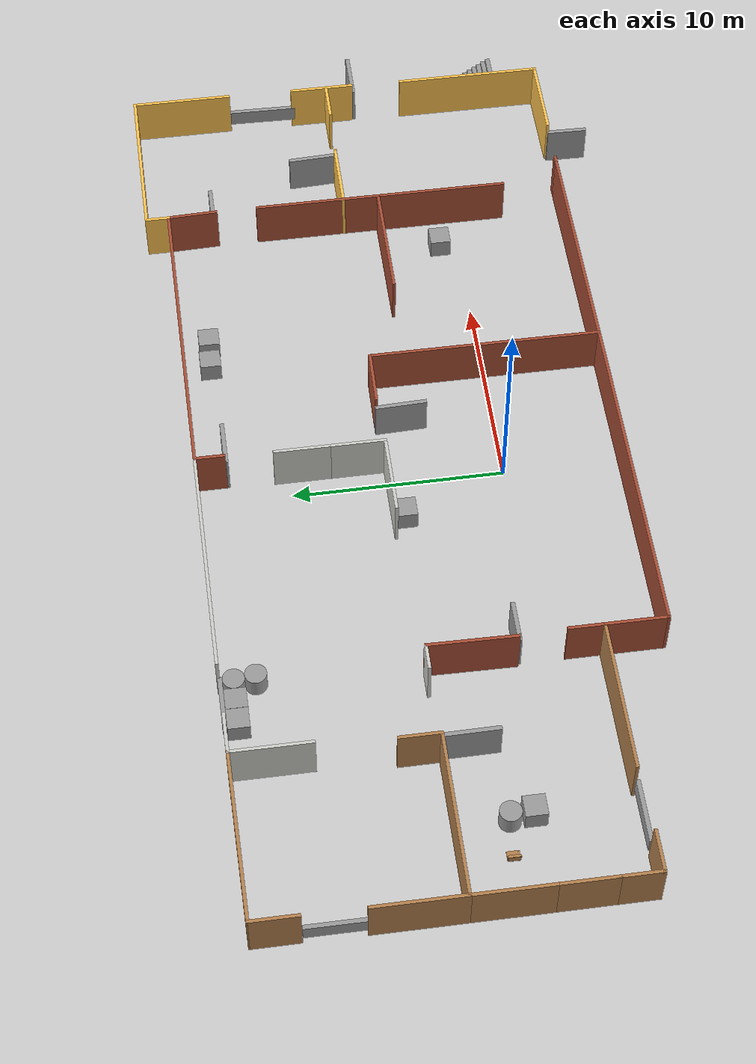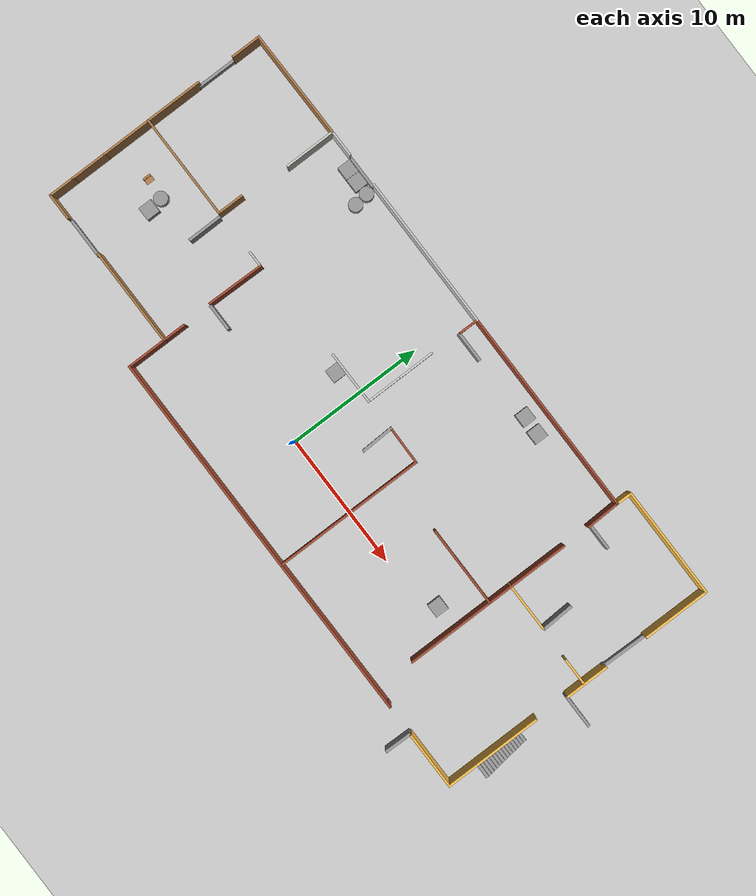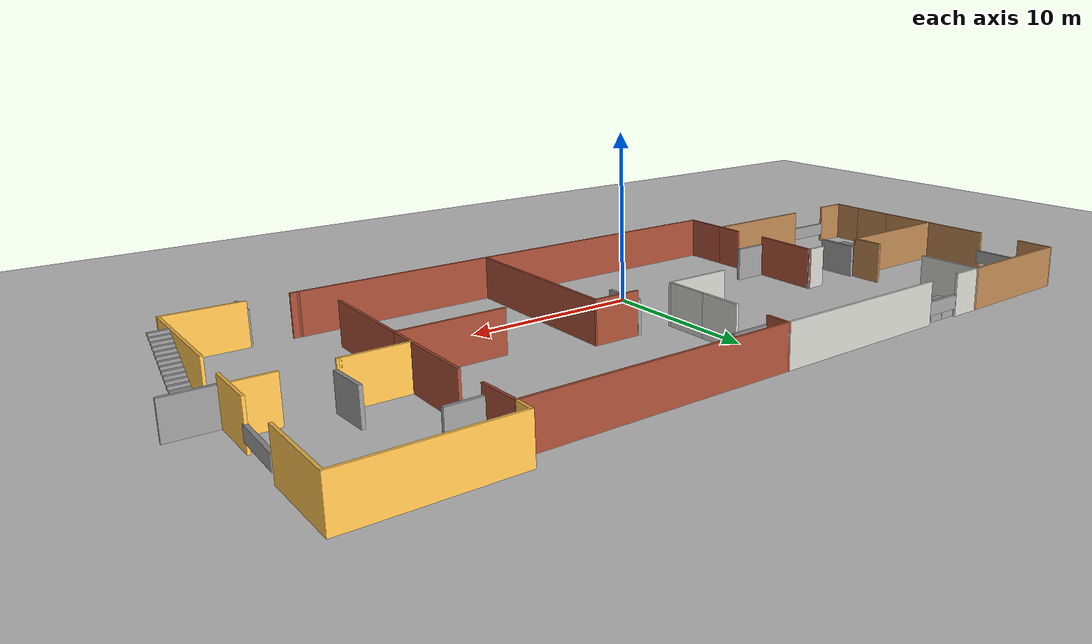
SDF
<sdf version="1.7">
 <world name="default">
  <light name="sun" type="directional">
   <pose>0 0 10 0 -0 0</pose>
   <diffuse>0.8 0.8 0.8 1</diffuse>
   <specular>0.2 0.2 0.2 1</specular>
   <attenuation>
    <range>1000</range>
    <constant>0.9</constant>
    <linear>0.01</linear>
    <quadratic>0.001</quadratic>
   </attenuation>
   <direction>-0.5 0.1 -0.9</direction>
   <spot><inner_angle>0</inner_angle><outer_angle>0</outer_angle><falloff>0</falloff></spot>
  </light>
  <model name="ground_plane">
   <static>1</static>
   <link name="link">
    <collision name="collision">
     <geometry><plane><normal>0 0 1</normal><size>100 100</size></plane></geometry>
     <surface><friction><ode><mu>100</mu><mu2>50</mu2></ode></friction></surface>
    </collision>
    <visual name="visual">
     <cast_shadows>0</cast_shadows>
     <geometry><plane><normal>0 0 1</normal><size>100 100</size></plane></geometry>
     <material>
      <script><uri>file://media/materials/scripts/gazebo.material</uri><name>Gazebo/Grey</name></script>
     </material>
    </visual>
   </link>
  </model>
  <gravity>0 0 -9.8</gravity>
  <magnetic_field>6e-06 2.3e-05 -4.2e-05</magnetic_field>
  <atmosphere type="adiabatic"/>
  <physics type="ode">
   <max_step_size>0.001</max_step_size>
   <real_time_factor>1</real_time_factor>
   <real_time_update_rate>1000</real_time_update_rate>
  </physics>
  <scene><ambient>0.4 0.4 0.4 1</ambient><background>0.7 0.7 0.7 1</background><shadows>1</shadows></scene>
  <audio><device>default</device></audio>
  <spherical_coordinates>
   <surface_model>EARTH_WGS84</surface_model>
   <latitude_deg>0</latitude_deg>
   <longitude_deg>0</longitude_deg>
   <elevation>0</elevation>
   <heading_deg>0</heading_deg>
  </spherical_coordinates>
  <model name="houseRoom">
   <pose>1.283 4.96744 0 0 -0 0</pose>
   <link name="Door_0">
    <collision name="Door_0_Collision">
     <geometry><box><size>2.00125 0.2 2</size></box></geometry>
     <pose>0 0 1 0 -0 0</pose>
    </collision>
    <visual name="Door_0_Visual">
     <pose>0 0 1 0 -0 0</pose>
     <geometry><box><size>2.00125 0.2 2</size></box></geometry>
     <material>
      <script><uri>file://media/materials/scripts/gazebo.material</uri><name>Gazebo/Grey</name></script>
     </material>
    </visual>
    <pose>-10.7502 -3.89696 0 0 -0 0</pose>
   </link>
   <link name="Door_1">
    <collision name="Door_1_Collision">
     <geometry><box><size>2.52128 0.2 2</size></box></geometry>
     <pose>0 0 1 0 -0 0</pose>
    </collision>
    <visual name="Door_1_Visual">
     <pose>0 0 1 0 -0 0</pose>
     <geometry><box><size>2.52128 0.2 2</size></box></geometry>
     <material>
      <script><uri>file://media/materials/scripts/gazebo.material</uri><name>Gazebo/Grey</name></script>
     </material>
    </visual>
    <pose>-15.9667 -1.14277 0 0 -0 1.57895</pose>
   </link>
   <link name="Door_2">
    <collision name="Door_2_Collision">
     <geometry><box><size>2.27656 0.2 2</size></box></geometry>
     <pose>0 0 1 0 -0 0</pose>
    </collision>
    <visual name="Door_2_Visual">
     <pose>0 0 1 0 -0 0</pose>
     <geometry><box><size>2.27656 0.2 2</size></box></geometry>
     <material>
      <script><uri>file://media/materials/scripts/gazebo.material</uri><name>Gazebo/Grey</name></script>
     </material>
    </visual>
    <pose>0.751745 7.97205 0 0 -0 0</pose>
   </link>
   <link name="Door_3">
    <collision name="Door_3_Collision">
     <geometry><box><size>2.4601 0.2 2</size></box></geometry>
     <pose>0 0 1 0 -0 0</pose>
    </collision>
    <visual name="Door_3_Visual">
     <pose>0 0 1 0 -0 0</pose>
     <geometry><box><size>2.4601 0.2 2</size></box></geometry>
     <material>
      <script><uri>file://media/materials/scripts/gazebo.material</uri><name>Gazebo/Grey</name></script>
     </material>
    </visual>
    <pose>1.92052 -0.523085 0 0 -0 -1.53662</pose>
   </link>
   <link name="Door_4">
    <collision name="Door_4_Collision">
     <geometry><box><size>2.49069 0.2 2</size></box></geometry>
     <pose>0 0 1 0 -0 0</pose>
    </collision>
    <visual name="Door_4_Visual">
     <pose>0 0 1 0 -0 0</pose>
     <geometry><box><size>2.49069 0.2 2</size></box></geometry>
     <material>
      <script><uri>file://media/materials/scripts/gazebo.material</uri><name>Gazebo/Grey</name></script>
     </material>
    </visual>
    <pose>24.0462 -0.899115 0 0 -0 0</pose>
   </link>
   <link name="Door_5">
    <collision name="Door_5_Collision">
     <geometry><box><size>1.98764 0.2 2</size></box></geometry>
     <pose>0 0 1 0 -0 0</pose>
    </collision>
    <visual name="Door_5_Visual">
     <pose>0 0 1 0 -0 0</pose>
     <geometry><box><size>1.98764 0.2 2</size></box></geometry>
     <material>
      <script><uri>file://media/materials/scripts/gazebo.material</uri><name>Gazebo/Grey</name></script>
     </material>
    </visual>
    <pose>18.5521 -11.512 0 0 -0 -1.58837</pose>
   </link>
   <link name="Door_6">
    <collision name="Door_6_Collision">
     <geometry><box><size>1.95536 0.2 2</size></box></geometry>
     <pose>0 0 1 0 -0 0</pose>
    </collision>
    <visual name="Door_6_Visual">
     <pose>0 0 1 0 -0 0</pose>
     <geometry><box><size>1.95536 0.2 2</size></box></geometry>
     <material>
      <script><uri>file://media/materials/scripts/gazebo.material</uri><name>Gazebo/Grey</name></script>
     </material>
    </visual>
    <pose>15.8134 7.1758 0 0 -0 0</pose>
   </link>
   <link name="Door_7">
    <collision name="Door_7_Collision">
     <geometry><box><size>2.37751 0.2 2</size></box></geometry>
     <pose>0 0 1 0 -0 0</pose>
    </collision>
    <visual name="Door_7_Visual">
     <pose>0 0 1 0 -0 0</pose>
     <geometry><box><size>2.37751 0.2 2</size></box></geometry>
     <material>
      <script><uri>file://media/materials/scripts/gazebo.material</uri><name>Gazebo/Grey</name></script>
     </material>
    </visual>
    <pose>18.3779 1.77586 0 0 -0 1.61969</pose>
   </link>
   <link name="Stairs_3">
    <visual name="Stairs_3_Visual_0">
     <pose>23.3107 -4.8985 0.083333 0 -0 0</pose>
     <geometry><box><size>1 0.233333 0.166667</size></box></geometry>
     <material>
      <script><uri>file://media/materials/scripts/gazebo.material</uri><name>Gazebo/Grey</name></script>
      <ambient>1 1 1 1</ambient>
     </material>
     <meta><layer>0</layer></meta>
    </visual>
    <collision name="Stairs_3_Collision_0">
     <geometry><box><size>1 0.233333 0.166667</size></box></geometry>
     <pose>23.3107 -4.8985 0.083333 0 -0 0</pose>
    </collision>
    <visual name="Stairs_3_Visual_1">
     <pose>23.3107 -5.13184 0.25 0 -0 0</pose>
     <geometry><box><size>1 0.233333 0.166667</size></box></geometry>
     <material>
      <script><uri>file://media/materials/scripts/gazebo.material</uri><name>Gazebo/Grey</name></script>
      <ambient>1 1 1 1</ambient>
     </material>
     <meta><layer>0</layer></meta>
    </visual>
    <collision name="Stairs_3_Collision_1">
     <geometry><box><size>1 0.233333 0.166667</size></box></geometry>
     <pose>23.3107 -5.13184 0.25 0 -0 0</pose>
    </collision>
    <visual name="Stairs_3_Visual_2">
     <pose>23.3107 -5.36517 0.416667 0 -0 0</pose>
     <geometry><box><size>1 0.233333 0.166667</size></box></geometry>
     <material>
      <script><uri>file://media/materials/scripts/gazebo.material</uri><name>Gazebo/Grey</name></script>
      <ambient>1 1 1 1</ambient>
     </material>
     <meta><layer>0</layer></meta>
    </visual>
    <collision name="Stairs_3_Collision_2">
     <geometry><box><size>1 0.233333 0.166667</size></box></geometry>
     <pose>23.3107 -5.36517 0.416667 0 -0 0</pose>
    </collision>
    <visual name="Stairs_3_Visual_3">
     <pose>23.3107 -5.5985 0.583333 0 -0 0</pose>
     <geometry><box><size>1 0.233333 0.166667</size></box></geometry>
     <material>
      <script><uri>file://media/materials/scripts/gazebo.material</uri><name>Gazebo/Grey</name></script>
      <ambient>1 1 1 1</ambient>
     </material>
     <meta><layer>0</layer></meta>
    </visual>
    <collision name="Stairs_3_Collision_3">
     <geometry><box><size>1 0.233333 0.166667</size></box></geometry>
     <pose>23.3107 -5.5985 0.583333 0 -0 0</pose>
    </collision>
    <visual name="Stairs_3_Visual_4">
     <pose>23.3107 -5.83184 0.75 0 -0 0</pose>
     <geometry><box><size>1 0.233333 0.166667</size></box></geometry>
     <material>
      <script><uri>file://media/materials/scripts/gazebo.material</uri><name>Gazebo/Grey</name></script>
      <ambient>1 1 1 1</ambient>
     </material>
     <meta><layer>0</layer></meta>
    </visual>
    <collision name="Stairs_3_Collision_4">
     <geometry><box><size>1 0.233333 0.166667</size></box></geometry>
     <pose>23.3107 -5.83184 0.75 0 -0 0</pose>
    </collision>
    <visual name="Stairs_3_Visual_5">
     <pose>23.3107 -6.06517 0.916667 0 -0 0</pose>
     <geometry><box><size>1 0.233333 0.166667</size></box></geometry>
     <material>
      <script><uri>file://media/materials/scripts/gazebo.material</uri><name>Gazebo/Grey</name></script>
      <ambient>1 1 1 1</ambient>
     </material>
     <meta><layer>0</layer></meta>
    </visual>
    <collision name="Stairs_3_Collision_5">
     <geometry><box><size>1 0.233333 0.166667</size></box></geometry>
     <pose>23.3107 -6.06517 0.916667 0 -0 0</pose>
    </collision>
    <visual name="Stairs_3_Visual_6">
     <pose>23.3107 -6.2985 1.08333 0 -0 0</pose>
     <geometry><box><size>1 0.233333 0.166667</size></box></geometry>
     <material>
      <script><uri>file://media/materials/scripts/gazebo.material</uri><name>Gazebo/Grey</name></script>
      <ambient>1 1 1 1</ambient>
     </material>
     <meta><layer>0</layer></meta>
    </visual>
    <collision name="Stairs_3_Collision_6">
     <geometry><box><size>1 0.233333 0.166667</size></box></geometry>
     <pose>23.3107 -6.2985 1.08333 0 -0 0</pose>
    </collision>
    <visual name="Stairs_3_Visual_7">
     <pose>23.3107 -6.53184 1.25 0 -0 0</pose>
     <geometry><box><size>1 0.233333 0.166667</size></box></geometry>
     <material>
      <script><uri>file://media/materials/scripts/gazebo.material</uri><name>Gazebo/Grey</name></script>
      <ambient>1 1 1 1</ambient>
     </material>
     <meta><layer>0</layer></meta>
    </visual>
    <collision name="Stairs_3_Collision_7">
     <geometry><box><size>1 0.233333 0.166667</size></box></geometry>
     <pose>23.3107 -6.53184 1.25 0 -0 0</pose>
    </collision>
    <visual name="Stairs_3_Visual_8">
     <pose>23.3107 -6.76517 1.41667 0 -0 0</pose>
     <geometry><box><size>1 0.233333 0.166667</size></box></geometry>
     <material>
      <script><uri>file://media/materials/scripts/gazebo.material</uri><name>Gazebo/Grey</name></script>
      <ambient>1 1 1 1</ambient>
     </material>
     <meta><layer>0</layer></meta>
    </visual>
    <collision name="Stairs_3_Collision_8">
     <geometry><box><size>1 0.233333 0.166667</size></box></geometry>
     <pose>23.3107 -6.76517 1.41667 0 -0 0</pose>
    </collision>
    <visual name="Stairs_3_Visual_9">
     <pose>23.3107 -6.9985 1.58333 0 -0 0</pose>
     <geometry><box><size>1 0.233333 0.166667</size></box></geometry>
     <material>
      <script><uri>file://media/materials/scripts/gazebo.material</uri><name>Gazebo/Grey</name></script>
      <ambient>1 1 1 1</ambient>
     </material>
     <meta><layer>0</layer></meta>
    </visual>
    <collision name="Stairs_3_Collision_9">
     <geometry><box><size>1 0.233333 0.166667</size></box></geometry>
     <pose>23.3107 -6.9985 1.58333 0 -0 0</pose>
    </collision>
    <visual name="Stairs_3_Visual_10">
     <pose>23.3107 -7.23184 1.75 0 -0 0</pose>
     <geometry><box><size>1 0.233333 0.166667</size></box></geometry>
     <material>
      <script><uri>file://media/materials/scripts/gazebo.material</uri><name>Gazebo/Grey</name></script>
      <ambient>1 1 1 1</ambient>
     </material>
     <meta><layer>0</layer></meta>
    </visual>
    <collision name="Stairs_3_Collision_10">
     <geometry><box><size>1 0.233333 0.166667</size></box></geometry>
     <pose>23.3107 -7.23184 1.75 0 -0 0</pose>
    </collision>
    <visual name="Stairs_3_Visual_11">
     <pose>23.3107 -7.46517 1.91667 0 -0 0</pose>
     <geometry><box><size>1 0.233333 0.166667</size></box></geometry>
     <material>
      <script><uri>file://media/materials/scripts/gazebo.material</uri><name>Gazebo/Grey</name></script>
      <ambient>1 1 1 1</ambient>
     </material>
     <meta><layer>0</layer></meta>
    </visual>
    <collision name="Stairs_3_Collision_11">
     <geometry><box><size>1 0.233333 0.166667</size></box></geometry>
     <pose>23.3107 -7.46517 1.91667 0 -0 0</pose>
    </collision>
    <visual name="Stairs_3_Visual_12">
     <pose>23.3107 -7.6985 2.08333 0 -0 0</pose>
     <geometry><box><size>1 0.233333 0.166667</size></box></geometry>
     <material>
      <script><uri>file://media/materials/scripts/gazebo.material</uri><name>Gazebo/Grey</name></script>
      <ambient>1 1 1 1</ambient>
     </material>
     <meta><layer>0</layer></meta>
    </visual>
    <collision name="Stairs_3_Collision_12">
     <geometry><box><size>1 0.233333 0.166667</size></box></geometry>
     <pose>23.3107 -7.6985 2.08333 0 -0 0</pose>
    </collision>
    <visual name="Stairs_3_Visual_13">
     <pose>23.3107 -7.93184 2.25 0 -0 0</pose>
     <geometry><box><size>1 0.233333 0.166667</size></box></geometry>
     <material>
      <script><uri>file://media/materials/scripts/gazebo.material</uri><name>Gazebo/Grey</name></script>
      <ambient>1 1 1 1</ambient>
     </material>
     <meta><layer>0</layer></meta>
    </visual>
    <collision name="Stairs_3_Collision_13">
     <geometry><box><size>1 0.233333 0.166667</size></box></geometry>
     <pose>23.3107 -7.93184 2.25 0 -0 0</pose>
    </collision>
    <visual name="Stairs_3_Visual_14">
     <pose>23.3107 -8.16517 2.41667 0 -0 0</pose>
     <geometry><box><size>1 0.233333 0.166667</size></box></geometry>
     <material>
      <script><uri>file://media/materials/scripts/gazebo.material</uri><name>Gazebo/Grey</name></script>
      <ambient>1 1 1 1</ambient>
     </material>
     <meta><layer>0</layer></meta>
    </visual>
    <collision name="Stairs_3_Collision_14">
     <geometry><box><size>1 0.233333 0.166667</size></box></geometry>
     <pose>23.3107 -8.16517 2.41667 0 -0 0</pose>
    </collision>
   </link>
   <link name="Wall_13">
    <collision name="Wall_13_Collision">
     <geometry><box><size>7.75 0.15 2.5</size></box></geometry>
     <pose>0 0 1.25 0 -0 0</pose>
    </collision>
    <visual name="Wall_13_Visual">
     <pose>0 0 1.25 0 -0 0</pose>
     <geometry><box><size>7.75 0.15 2.5</size></box></geometry>
     <material>
      <script><uri>file://media/materials/scripts/gazebo.material</uri><name>Gazebo/Wood</name></script>
      <ambient>1 1 1 1</ambient>
     </material>
     <meta><layer>0</layer></meta>
    </visual>
    <pose>-19.9357 0.231814 0 0 -0 0</pose>
   </link>
   <link name="Wall_14">
    <collision name="Wall_14_Collision">
     <geometry><box><size>2 0.15 2.5</size></box></geometry>
     <pose>0 0 1.25 0 -0 0</pose>
    </collision>
    <visual name="Wall_14_Visual">
     <pose>0 0 1.25 0 -0 0</pose>
     <geometry><box><size>2 0.15 2.5</size></box></geometry>
     <material>
      <script><uri>file://media/materials/scripts/gazebo.material</uri><name>Gazebo/Wood</name></script>
      <ambient>1 1 1 1</ambient>
     </material>
     <meta><layer>0</layer></meta>
    </visual>
    <pose>-16.1357 1.15681 0 0 -0 1.5708</pose>
   </link>
   <link name="Wall_16">
    <collision name="Wall_16_Collision">
     <geometry><box><size>3.75 0.15 2.5</size></box></geometry>
     <pose>0 0 1.25 0 -0 0</pose>
    </collision>
    <visual name="Wall_16_Visual">
     <pose>0 0 1.25 0 -0 0</pose>
     <geometry><box><size>3.75 0.15 2.5</size></box></geometry>
     <material>
      <script><uri>file://media/materials/scripts/gazebo.material</uri><name>Gazebo/Wood</name></script>
      <ambient>1 1 1 1</ambient>
     </material>
     <meta><layer>0</layer></meta>
    </visual>
    <pose>-23.7357 -1.56819 0 0 -0 -1.5708</pose>
   </link>
   <link name="Wall_17">
    <collision name="Wall_17_Collision">
     <geometry><box><size>2.75 0.15 2.5</size></box></geometry>
     <pose>0 0 1.25 0 -0 0</pose>
    </collision>
    <visual name="Wall_17_Visual">
     <pose>0 0 1.25 0 -0 0</pose>
     <geometry><box><size>2.75 0.15 2.5</size></box></geometry>
     <material>
      <script><uri>file://media/materials/scripts/gazebo.material</uri><name>Gazebo/Wood</name></script>
      <ambient>1 1 1 1</ambient>
     </material>
     <meta><layer>0</layer></meta>
    </visual>
    <pose>-23.7357 -4.66819 0 0 -0 -1.5708</pose>
   </link>
   <link name="Wall_18">
    <collision name="Wall_18_Collision">
     <geometry><box><size>2 0.15 2.5</size></box></geometry>
     <pose>0 0 1.25 0 -0 0</pose>
    </collision>
    <visual name="Wall_18_Visual">
     <pose>0 0 1.25 0 -0 0</pose>
     <geometry><box><size>2 0.15 2.5</size></box></geometry>
     <material>
      <script><uri>file://media/materials/scripts/gazebo.material</uri><name>Gazebo/Wood</name></script>
      <ambient>1 1 1 1</ambient>
     </material>
     <meta><layer>0</layer></meta>
    </visual>
    <pose>-23.7357 -6.89319 0 0 -0 -1.5708</pose>
   </link>
   <link name="Wall_19">
    <collision name="Wall_19_Collision">
     <geometry><box><size>2 0.15 2.5</size></box></geometry>
     <pose>0 0 1.25 0 -0 0</pose>
    </collision>
    <visual name="Wall_19_Visual">
     <pose>0 0 1.25 0 -0 0</pose>
     <geometry><box><size>2 0.15 2.5</size></box></geometry>
     <material>
      <script><uri>file://media/materials/scripts/gazebo.material</uri><name>Gazebo/Wood</name></script>
      <ambient>1 1 1 1</ambient>
     </material>
     <meta><layer>0</layer></meta>
    </visual>
    <pose>-22.8107 -7.81819 0 0 -0 0</pose>
   </link>
   <link name="Wall_2">
    <collision name="Wall_2_Collision">
     <geometry><box><size>8 0.15 2.5</size></box></geometry>
     <pose>0 0 1.25 0 -0 0</pose>
    </collision>
    <visual name="Wall_2_Visual">
     <pose>0 0 1.25 0 -0 0</pose>
     <geometry><box><size>8 0.15 2.5</size></box></geometry>
     <material>
      <script><uri>file://media/materials/scripts/gazebo.material</uri><name>Gazebo/Wood</name></script>
      <ambient>1 1 1 1</ambient>
     </material>
     <meta><layer>0</layer></meta>
    </visual>
    <pose>-19.7801 9.31802 0 0 -0 0.007794</pose>
   </link>
   <link name="Wall_21">
    <collision name="Wall_21_Collision">
     <geometry><box><size>7.25 0.15 2.5</size></box></geometry>
     <pose>0 0 1.25 0 -0 0</pose>
    </collision>
    <visual name="Wall_21_Visual">
     <pose>0 0 1.25 0 -0 0</pose>
     <geometry><box><size>7.25 0.15 2.5</size></box></geometry>
     <material>
      <script><uri>file://media/materials/scripts/gazebo.material</uri><name>Gazebo/Wood</name></script>
      <ambient>1 1 1 1</ambient>
     </material>
     <meta><layer>0</layer></meta>
    </visual>
    <pose>-15.2607 -7.65956 0 0 -0 0</pose>
   </link>
   <link name="Wall_22">
    <collision name="Wall_22_Collision">
     <geometry><box><size>1.75 0.15 2.5</size></box></geometry>
     <pose>0 0 1.25 0 -0 0</pose>
    </collision>
    <visual name="Wall_22_Visual">
     <pose>0 0 1.25 0 -0 0</pose>
     <geometry><box><size>1.75 0.15 2.5</size></box></geometry>
     <material>
      <script><uri>file://media/materials/scripts/gazebo.material</uri><name>Gazebo/Bricks</name></script>
      <ambient>1 1 1 1</ambient>
     </material>
     <meta><layer>0</layer></meta>
    </visual>
    <pose>-11.7107 -6.85956 0 0 -0 1.5708</pose>
   </link>
   <link name="Wall_24">
    <collision name="Wall_24_Collision">
     <geometry><box><size>4.24518 0.15 2.5</size></box></geometry>
     <pose>0 0 1.25 0 -0 0</pose>
    </collision>
    <visual name="Wall_24_Visual">
     <pose>0 0 1.25 0 -0 0</pose>
     <geometry><box><size>4.24518 0.15 2.5</size></box></geometry>
     <material>
      <script><uri>file://media/materials/scripts/gazebo.material</uri><name>Gazebo/Bricks</name></script>
      <ambient>1 1 1 1</ambient>
     </material>
     <meta><layer>0</layer></meta>
    </visual>
    <pose>-11.775 -1.75783 0 0 -0 1.55586</pose>
   </link>
   <link name="Wall_25">
    <collision name="Wall_25_Collision">
     <geometry><box><size>1.25 0.15 2.5</size></box></geometry>
     <pose>0 0 1.25 0 -0 0</pose>
    </collision>
    <visual name="Wall_25_Visual">
     <pose>0 0 1.25 0 -0 0</pose>
     <geometry><box><size>1.25 0.15 2.5</size></box></geometry>
     <material>
      <script><uri>file://media/materials/scripts/gazebo.material</uri><name>Gazebo/CeilingTiled</name></script>
      <ambient>1 1 1 1</ambient>
     </material>
     <meta><layer>0</layer></meta>
    </visual>
    <pose>-12.2944 0.289535 0 0 -0 3.14159</pose>
   </link>
   <link name="Wall_3">
    <collision name="Wall_3_Collision">
     <geometry><box><size>3.81118 0.15 2.5</size></box></geometry>
     <pose>0 0 1.25 0 -0 0</pose>
    </collision>
    <visual name="Wall_3_Visual">
     <pose>0 0 1.25 0 -0 0</pose>
     <geometry><box><size>3.81118 0.15 2.5</size></box></geometry>
     <material>
      <script><uri>file://media/materials/scripts/gazebo.material</uri><name>Gazebo/CeilingTiled</name></script>
      <ambient>1 1 1 1</ambient>
     </material>
     <meta><layer>0</layer></meta>
    </visual>
    <pose>-15.8551 7.51802 0 0 -0 -1.5708</pose>
   </link>
   <link name="Wall_30">
    <collision name="Wall_30_Collision">
     <geometry><box><size>2 0.15 2.5</size></box></geometry>
     <pose>0 0 1.25 0 -0 0</pose>
    </collision>
    <visual name="Wall_30_Visual">
     <pose>0 0 1.25 0 -0 0</pose>
     <geometry><box><size>2 0.15 2.5</size></box></geometry>
     <material>
      <script><uri>file://media/materials/scripts/gazebo.material</uri><name>Gazebo/CeilingTiled</name></script>
      <ambient>1 1 1 1</ambient>
     </material>
     <meta><layer>0</layer></meta>
    </visual>
    <pose>-14.9301 9.34861 0 0 -0 0</pose>
   </link>
   <link name="Wall_32">
    <collision name="Wall_32_Collision">
     <geometry><box><size>11.25 0.15 2.5</size></box></geometry>
     <pose>0 0 1.25 0 -0 0</pose>
    </collision>
    <visual name="Wall_32_Visual">
     <pose>0 0 1.25 0 -0 0</pose>
     <geometry><box><size>11.25 0.15 2.5</size></box></geometry>
     <material>
      <script><uri>file://media/materials/scripts/gazebo.material</uri><name>Gazebo/CeilingTiled</name></script>
      <ambient>1 1 1 1</ambient>
     </material>
     <meta><layer>0</layer></meta>
    </visual>
    <pose>-5.88846 9.40979 0 0 -0 0</pose>
   </link>
   <link name="Wall_33">
    <collision name="Wall_33_Collision">
     <geometry><box><size>1.5 0.15 2.5</size></box></geometry>
     <pose>0 0 1.25 0 -0 0</pose>
    </collision>
    <visual name="Wall_33_Visual">
     <pose>0 0 1.25 0 -0 0</pose>
     <geometry><box><size>1.5 0.15 2.5</size></box></geometry>
     <material>
      <script><uri>file://media/materials/scripts/gazebo.material</uri><name>Gazebo/Bricks</name></script>
      <ambient>1 1 1 1</ambient>
     </material>
     <meta><layer>0</layer></meta>
    </visual>
    <pose>-0.338461 8.73479 0 0 -0 -1.5708</pose>
   </link>
   <link name="Wall_35">
    <collision name="Wall_35_Collision">
     <geometry><box><size>2.68882 0.15 2.5</size></box></geometry>
     <pose>0 0 1.25 0 -0 0</pose>
    </collision>
    <visual name="Wall_35_Visual">
     <pose>0 0 1.25 0 -0 0</pose>
     <geometry><box><size>2.68882 0.15 2.5</size></box></geometry>
     <material>
      <script><uri>file://media/materials/scripts/gazebo.material</uri><name>Gazebo/CeilingTiled</name></script>
      <ambient>1 1 1 1</ambient>
     </material>
     <meta><layer>0</layer></meta>
    </visual>
    <pose>-0.425979 4.43896 0 0 -0 -1.5708</pose>
   </link>
   <link name="Wall_36">
    <collision name="Wall_36_Collision">
     <geometry><box><size>2.75 0.15 2.5</size></box></geometry>
     <pose>0 0 1.25 0 -0 0</pose>
    </collision>
    <visual name="Wall_36_Visual">
     <pose>0 0 1.25 0 -0 0</pose>
     <geometry><box><size>2.75 0.15 2.5</size></box></geometry>
     <material>
      <script><uri>file://media/materials/scripts/gazebo.material</uri><name>Gazebo/CeilingTiled</name></script>
      <ambient>1 1 1 1</ambient>
     </material>
     <meta><layer>0</layer></meta>
    </visual>
    <pose>-0.425979 1.83896 0 0 -0 -1.5708</pose>
   </link>
   <link name="Wall_38">
    <collision name="Wall_38_Collision">
     <geometry><box><size>4 0.15 2.5</size></box></geometry>
     <pose>0 0 1.25 0 -0 0</pose>
    </collision>
    <visual name="Wall_38_Visual">
     <pose>0 0 1.25 0 -0 0</pose>
     <geometry><box><size>4 0.15 2.5</size></box></geometry>
     <material>
      <script><uri>file://media/materials/scripts/gazebo.material</uri><name>Gazebo/CeilingTiled</name></script>
      <ambient>1 1 1 1</ambient>
     </material>
     <meta><layer>0</layer></meta>
    </visual>
    <pose>-2.35098 0.538965 0 0 -0 3.14159</pose>
   </link>
   <link name="Wall_41">
    <collision name="Wall_41_Collision">
     <geometry><box><size>3 0.15 2.5</size></box></geometry>
     <pose>0 0 1.25 0 -0 0</pose>
    </collision>
    <visual name="Wall_41_Visual">
     <pose>0 0 1.25 0 -0 0</pose>
     <geometry><box><size>3 0.15 2.5</size></box></geometry>
     <material>
      <script><uri>file://media/materials/scripts/gazebo.material</uri><name>Gazebo/Bricks</name></script>
      <ambient>1 1 1 1</ambient>
     </material>
     <meta><layer>0</layer></meta>
    </visual>
    <pose>-11.7107 -9.08456 0 0 -0 -1.5708</pose>
   </link>
   <link name="Wall_42">
    <collision name="Wall_42_Collision">
     <geometry><box><size>16.5 0.15 2.5</size></box></geometry>
     <pose>0 0 1.25 0 -0 0</pose>
    </collision>
    <visual name="Wall_42_Visual">
     <pose>0 0 1.25 0 -0 0</pose>
     <geometry><box><size>16.5 0.15 2.5</size></box></geometry>
     <material>
      <script><uri>file://media/materials/scripts/gazebo.material</uri><name>Gazebo/Bricks</name></script>
      <ambient>1 1 1 1</ambient>
     </material>
     <meta><layer>0</layer></meta>
    </visual>
    <pose>-3.53571 -10.5096 0 0 -0 0</pose>
   </link>
   <link name="Wall_43">
    <collision name="Wall_43_Collision">
     <geometry><box><size>11.25 0.15 2.5</size></box></geometry>
     <pose>0 0 1.25 0 -0 0</pose>
    </collision>
    <visual name="Wall_43_Visual">
     <pose>0 0 1.25 0 -0 0</pose>
     <geometry><box><size>11.25 0.15 2.5</size></box></geometry>
     <material>
      <script><uri>file://media/materials/scripts/gazebo.material</uri><name>Gazebo/Bricks</name></script>
      <ambient>1 1 1 1</ambient>
     </material>
     <meta><layer>0</layer></meta>
    </visual>
    <pose>4.63929 -4.95956 0 0 -0 1.5708</pose>
   </link>
   <link name="Wall_45">
    <collision name="Wall_45_Collision">
     <geometry><box><size>2.76836 0.15 2.5</size></box></geometry>
     <pose>0 0 1.25 0 -0 0</pose>
    </collision>
    <visual name="Wall_45_Visual">
     <pose>0 0 1.25 0 -0 0</pose>
     <geometry><box><size>2.76836 0.15 2.5</size></box></geometry>
     <material>
      <script><uri>file://media/materials/scripts/gazebo.material</uri><name>Gazebo/Bricks</name></script>
      <ambient>1 1 1 1</ambient>
     </material>
     <meta><layer>0</layer></meta>
    </visual>
    <pose>3.33027 0.61042 0 0 -0 -0.015259</pose>
   </link>
   <link name="Wall_47">
    <collision name="Wall_47_Collision">
     <geometry><box><size>15.25 0.15 2.5</size></box></geometry>
     <pose>0 0 1.25 0 -0 0</pose>
    </collision>
    <visual name="Wall_47_Visual">
     <pose>0 0 1.25 0 -0 0</pose>
     <geometry><box><size>15.25 0.15 2.5</size></box></geometry>
     <material>
      <script><uri>file://media/materials/scripts/gazebo.material</uri><name>Gazebo/Bricks</name></script>
      <ambient>1 1 1 1</ambient>
     </material>
     <meta><layer>0</layer></meta>
    </visual>
    <pose>7.21154 9.40979 0 0 -0 0</pose>
   </link>
   <link name="Wall_48">
    <collision name="Wall_48_Collision">
     <geometry><box><size>1.25 0.15 2.5</size></box></geometry>
     <pose>0 0 1.25 0 -0 0</pose>
    </collision>
    <visual name="Wall_48_Visual">
     <pose>0 0 1.25 0 -0 0</pose>
     <geometry><box><size>1.25 0.15 2.5</size></box></geometry>
     <material>
      <script><uri>file://media/materials/scripts/gazebo.material</uri><name>Gazebo/Grey</name></script>
      <ambient>1 0.764706 0.305882 1</ambient>
     </material>
     <meta><layer>0</layer></meta>
    </visual>
    <pose>14.7615 9.95979 0 0 -0 1.5708</pose>
   </link>
   <link name="Wall_49">
    <collision name="Wall_49_Collision">
     <geometry><box><size>8.25 0.15 2.5</size></box></geometry>
     <pose>0 0 1.25 0 -0 0</pose>
    </collision>
    <visual name="Wall_49_Visual">
     <pose>0 0 1.25 0 -0 0</pose>
     <geometry><box><size>8.25 0.15 2.5</size></box></geometry>
     <material>
      <script><uri>file://media/materials/scripts/gazebo.material</uri><name>Gazebo/Grey</name></script>
      <ambient>1 0.764706 0.305882 1</ambient>
     </material>
     <meta><layer>0</layer></meta>
    </visual>
    <pose>18.8115 10.5098 0 0 -0 0</pose>
   </link>
   <link name="Wall_5">
    <collision name="Wall_5_Collision">
     <geometry><box><size>2.25 0.15 2.5</size></box></geometry>
     <pose>0 0 1.25 0 -0 0</pose>
    </collision>
    <visual name="Wall_5_Visual">
     <pose>0 0 1.25 0 -0 0</pose>
     <geometry><box><size>2.25 0.15 2.5</size></box></geometry>
     <material>
      <script><uri>file://media/materials/scripts/gazebo.material</uri><name>Gazebo/Wood</name></script>
      <ambient>1 1 1 1</ambient>
     </material>
     <meta><layer>0</layer></meta>
    </visual>
    <pose>-23.7051 8.23743 0 0 -0 -1.5708</pose>
   </link>
   <link name="Wall_50">
    <collision name="Wall_50_Collision">
     <geometry><box><size>5 0.15 2.5</size></box></geometry>
     <pose>0 0 1.25 0 -0 0</pose>
    </collision>
    <visual name="Wall_50_Visual">
     <pose>0 0 1.25 0 -0 0</pose>
     <geometry><box><size>5 0.15 2.5</size></box></geometry>
     <material>
      <script><uri>file://media/materials/scripts/gazebo.material</uri><name>Gazebo/Grey</name></script>
      <ambient>1 0.764706 0.305882 1</ambient>
     </material>
     <meta><layer>0</layer></meta>
    </visual>
    <pose>22.8615 8.08479 0 0 -0 -1.5708</pose>
   </link>
   <link name="Wall_53">
    <collision name="Wall_53_Collision">
     <geometry><box><size>3.25 0.15 2.5</size></box></geometry>
     <pose>0 0 1.25 0 -0 0</pose>
    </collision>
    <visual name="Wall_53_Visual">
     <pose>0 0 1.25 0 -0 0</pose>
     <geometry><box><size>3.25 0.15 2.5</size></box></geometry>
     <material>
      <script><uri>file://media/materials/scripts/gazebo.material</uri><name>Gazebo/Grey</name></script>
      <ambient>1 0.764706 0.305882 1</ambient>
     </material>
     <meta><layer>0</layer></meta>
    </visual>
    <pose>22.8226 0.762859 0 0 -0 -1.5708</pose>
   </link>
   <link name="Wall_55">
    <collision name="Wall_55_Collision">
     <geometry><box><size>7.25 0.15 2.5</size></box></geometry>
     <pose>0 0 1.25 0 -0 0</pose>
    </collision>
    <visual name="Wall_55_Visual">
     <pose>0 0 1.25 0 -0 0</pose>
     <geometry><box><size>7.25 0.15 2.5</size></box></geometry>
     <material>
      <script><uri>file://media/materials/scripts/gazebo.material</uri><name>Gazebo/Grey</name></script>
      <ambient>1 0.764706 0.305882 1</ambient>
     </material>
     <meta><layer>0</layer></meta>
    </visual>
    <pose>22.7614 -6.95751 0 0 -0 -1.5708</pose>
   </link>
   <link name="Wall_56">
    <collision name="Wall_56_Collision">
     <geometry><box><size>4.25 0.15 2.5</size></box></geometry>
     <pose>0 0 1.25 0 -0 0</pose>
    </collision>
    <visual name="Wall_56_Visual">
     <pose>0 0 1.25 0 -0 0</pose>
     <geometry><box><size>4.25 0.15 2.5</size></box></geometry>
     <material>
      <script><uri>file://media/materials/scripts/gazebo.material</uri><name>Gazebo/Grey</name></script>
      <ambient>1 0.764706 0.305882 1</ambient>
     </material>
     <meta><layer>0</layer></meta>
    </visual>
    <pose>20.7114 -10.5075 0 0 -0 3.14159</pose>
   </link>
   <link name="Wall_58">
    <collision name="Wall_58_Collision">
     <geometry><box><size>0.5 0.15 2.5</size></box></geometry>
     <pose>0 0 1.25 0 -0 0</pose>
    </collision>
    <visual name="Wall_58_Visual">
     <pose>0 0 1.25 0 -0 0</pose>
     <geometry><box><size>0.5 0.15 2.5</size></box></geometry>
     <material>
      <script><uri>file://media/materials/scripts/gazebo.material</uri><name>Gazebo/Bricks</name></script>
      <ambient>1 1 1 1</ambient>
     </material>
     <meta><layer>0</layer></meta>
    </visual>
    <pose>16.1319 -10.4739 0 0 -0 3.14159</pose>
   </link>
   <link name="Wall_59">
    <collision name="Wall_59_Collision">
     <geometry><box><size>11.4676 0.15 2.5</size></box></geometry>
     <pose>0 0 1.25 0 -0 0</pose>
    </collision>
    <visual name="Wall_59_Visual">
     <pose>0 0 1.25 0 -0 0</pose>
     <geometry><box><size>11.4676 0.15 2.5</size></box></geometry>
     <material>
      <script><uri>file://media/materials/scripts/gazebo.material</uri><name>Gazebo/Bricks</name></script>
      <ambient>1 1 1 1</ambient>
     </material>
     <meta><layer>0</layer></meta>
    </visual>
    <pose>10.2981 -10.4917 0 0 -0 -3.13844</pose>
   </link>
   <link name="Wall_62">
    <collision name="Wall_62_Collision">
     <geometry><box><size>6 0.15 2.5</size></box></geometry>
     <pose>0 0 1.25 0 -0 0</pose>
    </collision>
    <visual name="Wall_62_Visual">
     <pose>0 0 1.25 0 -0 0</pose>
     <geometry><box><size>6 0.15 2.5</size></box></geometry>
     <material>
      <script><uri>file://media/materials/scripts/gazebo.material</uri><name>Gazebo/Bricks</name></script>
      <ambient>1 1 1 1</ambient>
     </material>
     <meta><layer>0</layer></meta>
    </visual>
    <pose>11.9313 -1.16156 0 0 -0 0</pose>
   </link>
   <link name="Wall_63">
    <collision name="Wall_63_Collision">
     <geometry><box><size>6.5 0.15 2.5</size></box></geometry>
     <pose>0 0 1.25 0 -0 0</pose>
    </collision>
    <visual name="Wall_63_Visual">
     <pose>0 0 1.25 0 -0 0</pose>
     <geometry><box><size>6.5 0.15 2.5</size></box></geometry>
     <material>
      <script><uri>file://media/materials/scripts/gazebo.material</uri><name>Gazebo/Bricks</name></script>
      <ambient>1 1 1 1</ambient>
     </material>
     <meta><layer>0</layer></meta>
    </visual>
    <pose>14.8563 -4.33656 0 0 -0 -1.5708</pose>
   </link>
   <link name="Wall_66">
    <collision name="Wall_66_Collision">
     <geometry><box><size>6.25 0.15 2.5</size></box></geometry>
     <pose>0 0 1.25 0 -0 0</pose>
    </collision>
    <visual name="Wall_66_Visual">
     <pose>0 0 1.25 0 -0 0</pose>
     <geometry><box><size>6.25 0.15 2.5</size></box></geometry>
     <material>
      <script><uri>file://media/materials/scripts/gazebo.material</uri><name>Gazebo/Bricks</name></script>
      <ambient>1 1 1 1</ambient>
     </material>
     <meta><layer>0</layer></meta>
    </visual>
    <pose>14.8563 1.88844 0 0 -0 1.5708</pose>
   </link>
   <link name="Wall_68">
    <collision name="Wall_68_Collision">
     <geometry><box><size>2.5262 0.15 2.5</size></box></geometry>
     <pose>0 0 1.25 0 -0 0</pose>
    </collision>
    <visual name="Wall_68_Visual">
     <pose>0 0 1.25 0 -0 0</pose>
     <geometry><box><size>2.5262 0.15 2.5</size></box></geometry>
     <material>
      <script><uri>file://media/materials/scripts/gazebo.material</uri><name>Gazebo/Bricks</name></script>
      <ambient>1 1 1 1</ambient>
     </material>
     <meta><layer>0</layer></meta>
    </visual>
    <pose>14.8037 8.22244 0 0 -0 1.60632</pose>
   </link>
   <link name="Wall_71">
    <collision name="Wall_71_Collision">
     <geometry><box><size>2 0.15 2.5</size></box></geometry>
     <pose>0 0 1.25 0 -0 0</pose>
    </collision>
    <visual name="Wall_71_Visual">
     <pose>0 0 1.25 0 -0 0</pose>
     <geometry><box><size>2 0.15 2.5</size></box></geometry>
     <material>
      <script><uri>file://media/materials/scripts/gazebo.material</uri><name>Gazebo/Grey</name></script>
      <ambient>1 0.764706 0.305882 1</ambient>
     </material>
     <meta><layer>0</layer></meta>
    </visual>
    <pose>21.801 0.527016 0 0 -0 3.14159</pose>
   </link>
   <link name="Wall_73">
    <collision name="Wall_73_Collision">
     <geometry><box><size>3.5 0.15 2.5</size></box></geometry>
     <pose>0 0 1.25 0 -0 0</pose>
    </collision>
    <visual name="Wall_73_Visual">
     <pose>0 0 1.25 0 -0 0</pose>
     <geometry><box><size>3.5 0.15 2.5</size></box></geometry>
     <material>
      <script><uri>file://media/materials/scripts/gazebo.material</uri><name>Gazebo/Grey</name></script>
      <ambient>1 0.764706 0.305882 1</ambient>
     </material>
     <meta><layer>0</layer></meta>
    </visual>
    <pose>16.5209 0.597374 0 0 -0 0</pose>
   </link>
   <link name="Wall_74">
    <collision name="Wall_74_Collision">
     <geometry><box><size>0.25 0.15 2.5</size></box></geometry>
     <pose>0 0 1.25 0 -0 0</pose>
    </collision>
    <visual name="Wall_74_Visual">
     <pose>0 0 1.25 0 -0 0</pose>
     <geometry><box><size>0.25 0.15 2.5</size></box></geometry>
     <material>
      <script><uri>file://media/materials/scripts/gazebo.material</uri><name>Gazebo/Grey</name></script>
      <ambient>1 0.764706 0.305882 1</ambient>
     </material>
     <meta><layer>0</layer></meta>
    </visual>
    <pose>18.2459 0.597374 0 0 -0 0</pose>
   </link>
   <link name="Wall_8">
    <collision name="Wall_8_Collision">
     <geometry><box><size>4.25 0.15 2.5</size></box></geometry>
     <pose>0 0 1.25 0 -0 0</pose>
    </collision>
    <visual name="Wall_8_Visual">
     <pose>0 0 1.25 0 -0 0</pose>
     <geometry><box><size>4.25 0.15 2.5</size></box></geometry>
     <material>
      <script><uri>file://media/materials/scripts/gazebo.material</uri><name>Gazebo/Wood</name></script>
      <ambient>1 1 1 1</ambient>
     </material>
     <meta><layer>0</layer></meta>
    </visual>
    <pose>-23.7357 2.28181 0 0 -0 -1.5708</pose>
   </link>
   <link name="Window_0">
    <collision name="Window_0_Collision">
     <geometry><box><size>2.84954 0.2 0.8</size></box></geometry>
     <pose>0 0 0.4 0 -0 0</pose>
    </collision>
    <visual name="Window_0_Visual">
     <pose>0 0 0.4 0 -0 0</pose>
     <geometry><box><size>2.84954 0.2 0.8</size></box></geometry>
     <material>
      <script><uri>file://media/materials/scripts/gazebo.material</uri><name>Gazebo/Grey</name></script>
     </material>
    </visual>
    <pose>-23.6898 5.67778 0.5 0 -0 -1.57178</pose>
   </link>
   <link name="Window_1">
    <collision name="Window_1_Collision">
     <geometry><box><size>2.94132 0.2 0.8</size></box></geometry>
     <pose>0 0 0.4 0 -0 0</pose>
    </collision>
    <visual name="Window_1_Visual">
     <pose>0 0 0.4 0 -0 0</pose>
     <geometry><box><size>2.94132 0.2 0.8</size></box></geometry>
     <material>
      <script><uri>file://media/materials/scripts/gazebo.material</uri><name>Gazebo/Grey</name></script>
     </material>
    </visual>
    <pose>-20.3096 -7.78192 0.5 0 -0 0</pose>
   </link>
   <link name="Window_2">
    <collision name="Window_2_Collision">
     <geometry><box><size>2.42128 0.2 0.8</size></box></geometry>
     <pose>0 0 0.4 0 -0 0</pose>
    </collision>
    <visual name="Window_2_Visual">
     <pose>0 0 0.4 0 -0 0</pose>
     <geometry><box><size>2.42128 0.2 0.8</size></box></geometry>
     <material>
      <script><uri>file://media/materials/scripts/gazebo.material</uri><name>Gazebo/Grey</name></script>
     </material>
    </visual>
    <pose>-12.6468 9.34861 0.5 0 -0 0</pose>
   </link>
   <link name="Window_3">
    <collision name="Window_3_Collision">
     <geometry><box><size>3.36656 0.2 0.8</size></box></geometry>
     <pose>0 0 0.4 0 -0 0</pose>
    </collision>
    <visual name="Window_3_Visual">
     <pose>0 0 0.4 0 -0 0</pose>
     <geometry><box><size>3.36656 0.2 0.8</size></box></geometry>
     <material>
      <script><uri>file://media/materials/scripts/gazebo.material</uri><name>Gazebo/Grey</name></script>
     </material>
    </visual>
    <pose>22.8544 3.88989 0.5 0 0 -1.58887</pose>
   </link>
   <static>1</static>
  </model>
  <model name="unit_box">
   <pose>-12.1372 13.716 0.499995 1e-05 -0 -4e-06</pose>
   <link name="link">
    <inertial>
     <mass>1</mass>
     <inertia>
      <ixx>0.166667</ixx>
      <ixy>0</ixy>
      <ixz>0</ixz>
      <iyy>0.166667</iyy>
      <iyz>0</iyz>
      <izz>0.166667</izz>
     </inertia>
    </inertial>
    <collision name="collision"><geometry><box><size>1 1 1</size></box></geometry></collision>
    <visual name="visual">
     <geometry><box><size>1 1 1</size></box></geometry>
     <material>
      <script><name>Gazebo/Grey</name><uri>file://media/materials/scripts/gazebo.material</uri></script>
     </material>
    </visual>
   </link>
  </model>
  <model name="unit_box_0">
   <pose>-11.1277 13.7123 0.499995 0 1e-05 5.1e-05</pose>
   <link name="link">
    <inertial>
     <mass>1</mass>
     <inertia>
      <ixx>0.166667</ixx>
      <ixy>0</ixy>
      <ixz>0</ixz>
      <iyy>0.166667</iyy>
      <iyz>0</iyz>
      <izz>0.166667</izz>
     </inertia>
    </inertial>
    <collision name="collision"><geometry><box><size>1 1 1</size></box></geometry></collision>
    <visual name="visual">
     <geometry><box><size>1 1 1</size></box></geometry>
     <material>
      <script><name>Gazebo/Grey</name><uri>file://media/materials/scripts/gazebo.material</uri></script>
     </material>
    </visual>
   </link>
  </model>
  <model name="unit_cylinder">
   <pose>-10.1276 13.713 0.499993 1e-06 -1e-06 -7.2e-05</pose>
   <link name="link">
    <inertial>
     <mass>1</mass>
     <inertia><ixx>0.145833</ixx><ixy>0</ixy><ixz>0</ixz><iyy>0.145833</iyy><iyz>0</iyz><izz>0.125</izz></inertia>
    </inertial>
    <collision name="collision">
     <geometry><cylinder><radius>0.5</radius><length>1</length></cylinder></geometry>
    </collision>
    <visual name="visual">
     <geometry><cylinder><radius>0.5</radius><length>1</length></cylinder></geometry>
     <material>
      <script><name>Gazebo/Grey</name><uri>file://media/materials/scripts/gazebo.material</uri></script>
     </material>
    </visual>
   </link>
  </model>
  <model name="unit_cylinder_0">
   <pose>-10.0059 12.7204 0.5 0 0 -0.000382</pose>
   <link name="link">
    <inertial>
     <mass>1</mass>
     <inertia><ixx>0.145833</ixx><ixy>0</ixy><ixz>0</ixz><iyy>0.145833</iyy><iyz>0</iyz><izz>0.125</izz></inertia>
    </inertial>
    <collision name="collision">
     <geometry><cylinder><radius>0.5</radius><length>1</length></cylinder></geometry>
    </collision>
    <visual name="visual">
     <geometry><cylinder><radius>0.5</radius><length>1</length></cylinder></geometry>
     <material>
      <script><name>Gazebo/Grey</name><uri>file://media/materials/scripts/gazebo.material</uri></script>
     </material>
    </visual>
   </link>
  </model>
  <model name="wooden_case">
   <link name="base">
    <pose>0 0 0.024 0 -0 0</pose>
    <inertial>
     <pose>-0.022184 0 0.171592 0 -0 0</pose>
     <mass>3.96264</mass>
     <inertia>
      <ixx>0.213536</ixx>
      <ixy>0</ixy>
      <ixz>0.000779377</ixz>
      <iyy>0.0708943</iyy>
      <iyz>0</iyz>
      <izz>0.154604</izz>
     </inertia>
    </inertial>
    <collision name="collision_back">
     <pose>-0.053975 0 0.1778 0 -0 0</pose>
     <geometry><box><size>0.01905 0.5461 0.3175</size></box></geometry>
     <surface>
      <contact>
       <poissons_ratio>0.347</poissons_ratio>
       <elastic_modulus>8.8e+09</elastic_modulus>
       <ode><kp>100000</kp><kd>100</kd><max_vel>100</max_vel><min_depth>0.001</min_depth></ode>
      </contact>
      <friction>
       <torsional>
        <coefficient>1</coefficient>
        <use_patch_radius>0</use_patch_radius>
        <surface_radius>0.01</surface_radius>
       </torsional>
      </friction>
     </surface>
    </collision>
    <visual name="visual_back">
     <pose>-0.053975 0 0.1778 0 -0 0</pose>
     <geometry><box><size>0.01905 0.5461 0.3175</size></box></geometry>
     <material>
      <script><uri>file://media/materials/scripts/gazebo.material</uri><name>Gazebo/Wood</name></script>
     </material>
    </visual>
    <collision name="collision_bottom">
     <pose>0 0 0.009525 0 -0 0</pose>
     <geometry><box><size>0.127 0.5842 0.01905</size></box></geometry>
     <surface>
      <contact>
       <poissons_ratio>0.347</poissons_ratio>
       <elastic_modulus>8.8e+09</elastic_modulus>
       <ode><kp>100000</kp><kd>100</kd><max_vel>100</max_vel><min_depth>0.001</min_depth></ode>
      </contact>
      <friction>
       <torsional>
        <coefficient>1</coefficient>
        <use_patch_radius>0</use_patch_radius>
        <surface_radius>0.01</surface_radius>
       </torsional>
      </friction>
     </surface>
    </collision>
    <visual name="visual_bottom">
     <pose>0 0 0.009525 0 -0 0</pose>
     <geometry><box><size>0.127 0.5842 0.01905</size></box></geometry>
     <material>
      <script><uri>file://media/materials/scripts/gazebo.material</uri><name>Gazebo/Wood</name></script>
     </material>
    </visual>
    <collision name="collision_top">
     <pose>0 0 0.346075 0 -0 0</pose>
     <geometry><box><size>0.127 0.5842 0.01905</size></box></geometry>
     <surface>
      <contact>
       <poissons_ratio>0.347</poissons_ratio>
       <elastic_modulus>8.8e+09</elastic_modulus>
       <ode><kp>100000</kp><kd>100</kd><max_vel>100</max_vel><min_depth>0.001</min_depth></ode>
      </contact>
      <friction>
       <torsional>
        <coefficient>1</coefficient>
        <use_patch_radius>0</use_patch_radius>
        <surface_radius>0.01</surface_radius>
       </torsional>
      </friction>
     </surface>
    </collision>
    <visual name="visual_top">
     <pose>0 0 0.346075 0 -0 0</pose>
     <geometry><box><size>0.127 0.5842 0.01905</size></box></geometry>
     <material>
      <script><uri>file://media/materials/scripts/gazebo.material</uri><name>Gazebo/Wood</name></script>
     </material>
    </visual>
    <collision name="collision_left">
     <pose>0 -0.282575 0.1778 0 -0 0</pose>
     <geometry><box><size>0.127 0.01905 0.3175</size></box></geometry>
     <surface>
      <contact>
       <poissons_ratio>0.347</poissons_ratio>
       <elastic_modulus>8.8e+09</elastic_modulus>
       <ode><kp>100000</kp><kd>100</kd><max_vel>100</max_vel><min_depth>0.001</min_depth></ode>
      </contact>
      <friction>
       <torsional>
        <coefficient>1</coefficient>
        <use_patch_radius>0</use_patch_radius>
        <surface_radius>0.01</surface_radius>
       </torsional>
      </friction>
     </surface>
    </collision>
    <visual name="visual_left">
     <pose>0 -0.282575 0.1778 0 -0 0</pose>
     <geometry><box><size>0.127 0.01905 0.3175</size></box></geometry>
     <material>
      <script><uri>file://media/materials/scripts/gazebo.material</uri><name>Gazebo/Wood</name></script>
     </material>
    </visual>
    <collision name="collision_right">
     <pose>0 0.282575 0.1778 0 -0 0</pose>
     <geometry><box><size>0.127 0.01905 0.3175</size></box></geometry>
     <surface>
      <contact>
       <poissons_ratio>0.347</poissons_ratio>
       <elastic_modulus>8.8e+09</elastic_modulus>
       <ode><kp>100000</kp><kd>100</kd><max_vel>100</max_vel><min_depth>0.001</min_depth></ode>
      </contact>
      <friction>
       <torsional>
        <coefficient>1</coefficient>
        <use_patch_radius>0</use_patch_radius>
        <surface_radius>0.01</surface_radius>
       </torsional>
      </friction>
     </surface>
    </collision>
    <visual name="visual_right">
     <pose>0 0.282575 0.1778 0 -0 0</pose>
     <geometry><box><size>0.127 0.01905 0.3175</size></box></geometry>
     <material>
      <script><uri>file://media/materials/scripts/gazebo.material</uri><name>Gazebo/Wood</name></script>
     </material>
    </visual>
    <collision name="collision_block_left">
     <pose>0.0095 -0.2151 -0.012 0 -0 0</pose>
     <geometry><box><size>0.108 0.05 0.024</size></box></geometry>
     <surface>
      <contact>
       <poissons_ratio>0.347</poissons_ratio>
       <elastic_modulus>8.8e+09</elastic_modulus>
       <ode><kp>100000</kp><kd>100</kd><max_vel>100</max_vel><min_depth>0.001</min_depth></ode>
      </contact>
      <friction>
       <torsional>
        <coefficient>1</coefficient>
        <use_patch_radius>0</use_patch_radius>
        <surface_radius>0.01</surface_radius>
       </torsional>
      </friction>
     </surface>
    </collision>
    <visual name="visual_block_left">
     <pose>0.0095 -0.2151 -0.012 0 -0 0</pose>
     <geometry><box><size>0.108 0.05 0.024</size></box></geometry>
     <material>
      <script><uri>file://media/materials/scripts/gazebo.material</uri><name>Gazebo/Wood</name></script>
     </material>
    </visual>
    <collision name="collision_block_right">
     <pose>0.0095 0.2151 -0.012 0 -0 0</pose>
     <geometry><box><size>0.108 0.05 0.024</size></box></geometry>
     <surface>
      <contact>
       <poissons_ratio>0.347</poissons_ratio>
       <elastic_modulus>8.8e+09</elastic_modulus>
       <ode><kp>100000</kp><kd>100</kd><max_vel>100</max_vel><min_depth>0.001</min_depth></ode>
      </contact>
      <friction>
       <torsional>
        <coefficient>1</coefficient>
        <use_patch_radius>0</use_patch_radius>
        <surface_radius>0.01</surface_radius>
       </torsional>
      </friction>
     </surface>
    </collision>
    <visual name="visual_block_right">
     <pose>0.0095 0.2151 -0.012 0 -0 0</pose>
     <geometry><box><size>0.108 0.05 0.024</size></box></geometry>
     <material>
      <script><uri>file://media/materials/scripts/gazebo.material</uri><name>Gazebo/Wood</name></script>
     </material>
    </visual>
   </link>
   <link name="lid">
    <pose>0.243775 0 0.009525 0 -0 0</pose>
    <inertial>
     <mass>1.97874</mass>
     <inertia>
      <ixx>0.0563367</ixx>
      <ixy>0</ixy>
      <ixz>0</ixz>
      <iyy>0.020911</iyy>
      <iyz>0</iyz>
      <izz>0.0771281</izz>
     </inertia>
    </inertial>
    <collision name="collision">
     <geometry><box><size>0.3556 0.5842 0.01905</size></box></geometry>
     <surface>
      <contact>
       <poissons_ratio>0.347</poissons_ratio>
       <elastic_modulus>8.8e+09</elastic_modulus>
       <ode><kp>100000</kp><kd>100</kd><max_vel>100</max_vel><min_depth>0.001</min_depth></ode>
      </contact>
      <friction>
       <torsional>
        <coefficient>1</coefficient>
        <use_patch_radius>0</use_patch_radius>
        <surface_radius>0.01</surface_radius>
       </torsional>
      </friction>
     </surface>
    </collision>
    <visual name="visual">
     <geometry><box><size>0.3556 0.5842 0.01905</size></box></geometry>
     <material>
      <script><uri>file://media/materials/scripts/gazebo.material</uri><name>Gazebo/Wood</name></script>
     </material>
    </visual>
    <visual name="tee_nut_1">
     <pose>0.122 -0.216 0 0 -0 0</pose>
     <geometry><cylinder><radius>0.00635</radius><length>0.0192405</length></cylinder></geometry>
     <material>
      <script><uri>file://media/materials/scripts/gazebo.material</uri><name>Gazebo/Grey</name></script>
     </material>
    </visual>
    <visual name="tee_nut_2">
     <pose>0.122 -0.088 0 0 -0 0</pose>
     <geometry><cylinder><radius>0.00635</radius><length>0.0192405</length></cylinder></geometry>
     <material>
      <script><uri>file://media/materials/scripts/gazebo.material</uri><name>Gazebo/Grey</name></script>
     </material>
    </visual>
    <visual name="tee_nut_3">
     <pose>0.122 0.088 0 0 -0 0</pose>
     <geometry><cylinder><radius>0.00635</radius><length>0.0192405</length></cylinder></geometry>
     <material>
      <script><uri>file://media/materials/scripts/gazebo.material</uri><name>Gazebo/Grey</name></script>
     </material>
    </visual>
    <visual name="tee_nut_4">
     <pose>0.122 0.216 0 0 -0 0</pose>
     <geometry><cylinder><radius>0.00635</radius><length>0.0192405</length></cylinder></geometry>
     <material>
      <script><uri>file://media/materials/scripts/gazebo.material</uri><name>Gazebo/Grey</name></script>
     </material>
    </visual>
   </link>
   <joint name="lid_hinge" type="revolute">
    <pose>-0.1778 0 0.01905 0 -0 0</pose>
    <parent>base</parent>
    <child>lid</child>
    <axis>
     <xyz>0 1 0</xyz>
     <limit><upper>0.523599</upper><lower>-1.5708</lower></limit>
     <dynamics><spring_reference>0</spring_reference><spring_stiffness>0</spring_stiffness></dynamics>
    </axis>
   </joint>
   <pose>-19.9341 2.84325 -0.001057 0 -0.000429 0</pose>
  </model>
  <model name="unit_box_1">
   <pose>-1.99108 4.93141 0.5 0 -0 1e-06</pose>
   <link name="link">
    <inertial>
     <mass>1</mass>
     <inertia>
      <ixx>0.166667</ixx>
      <ixy>0</ixy>
      <ixz>0</ixz>
      <iyy>0.166667</iyy>
      <iyz>0</iyz>
      <izz>0.166667</izz>
     </inertia>
    </inertial>
    <collision name="collision"><geometry><box><size>1 1 1</size></box></geometry></collision>
    <visual name="visual">
     <geometry><box><size>1 1 1</size></box></geometry>
     <material>
      <script><name>Gazebo/Grey</name><uri>file://media/materials/scripts/gazebo.material</uri></script>
     </material>
    </visual>
   </link>
  </model>
  <model name="unit_cylinder_1">
   <pose>-18.1526 2.73252 0.499992 -3e-06 3e-06 0</pose>
   <link name="link">
    <inertial>
     <mass>1</mass>
     <inertia><ixx>0.145833</ixx><ixy>0</ixy><ixz>0</ixz><iyy>0.145833</iyy><iyz>0</iyz><izz>0.125</izz></inertia>
    </inertial>
    <collision name="collision">
     <geometry><cylinder><radius>0.5</radius><length>1</length></cylinder></geometry>
    </collision>
    <visual name="visual">
     <geometry><cylinder><radius>0.5</radius><length>1</length></cylinder></geometry>
     <material>
      <script><name>Gazebo/Grey</name><uri>file://media/materials/scripts/gazebo.material</uri></script>
     </material>
    </visual>
   </link>
  </model>
  <model name="unit_box_2">
   <pose>7.96555 13.1165 0.499995 -1e-05 -0 -0</pose>
   <link name="link">
    <inertial>
     <mass>1</mass>
     <inertia>
      <ixx>0.166667</ixx>
      <ixy>0</ixy>
      <ixz>0</ixz>
      <iyy>0.166667</iyy>
      <iyz>0</iyz>
      <izz>0.166667</izz>
     </inertia>
    </inertial>
    <collision name="collision"><geometry><box><size>1 1 1</size></box></geometry></collision>
    <visual name="visual">
     <geometry><box><size>1 1 1</size></box></geometry>
     <material>
      <script><name>Gazebo/Grey</name><uri>file://media/materials/scripts/gazebo.material</uri></script>
     </material>
    </visual>
   </link>
  </model>
  <model name="unit_box_3">
   <pose>9.33391 13.0634 0.499995 0 1e-05 0</pose>
   <link name="link">
    <inertial>
     <mass>1</mass>
     <inertia>
      <ixx>0.166667</ixx>
      <ixy>0</ixy>
      <ixz>0</ixz>
      <iyy>0.166667</iyy>
      <iyz>0</iyz>
      <izz>0.166667</izz>
     </inertia>
    </inertial>
    <collision name="collision"><geometry><box><size>1 1 1</size></box></geometry></collision>
    <visual name="visual">
     <geometry><box><size>1 1 1</size></box></geometry>
     <material>
      <script><name>Gazebo/Grey</name><uri>file://media/materials/scripts/gazebo.material</uri></script>
     </material>
    </visual>
   </link>
  </model>
  <model name="unit_box_4">
   <pose>-18.0112 1.66281 0.499995 -1e-05 -0 -0</pose>
   <link name="link">
    <inertial>
     <mass>1</mass>
     <inertia>
      <ixx>0.166667</ixx>
      <ixy>0</ixy>
      <ixz>0</ixz>
      <iyy>0.166667</iyy>
      <iyz>0</iyz>
      <izz>0.166667</izz>
     </inertia>
    </inertial>
    <collision name="collision"><geometry><box><size>1 1 1</size></box></geometry></collision>
    <visual name="visual">
     <geometry><box><size>1 1 1</size></box></geometry>
     <material>
      <script><name>Gazebo/Grey</name><uri>file://media/materials/scripts/gazebo.material</uri></script>
     </material>
    </visual>
   </link>
  </model>
  <model name="unit_box_5">
   <pose>14.4243 0.911286 0.5 0 -0 0</pose>
   <link name="link">
    <inertial>
     <mass>1</mass>
     <inertia>
      <ixx>0.166667</ixx>
      <ixy>0</ixy>
      <ixz>0</ixz>
      <iyy>0.166667</iyy>
      <iyz>0</iyz>
      <izz>0.166667</izz>
     </inertia>
    </inertial>
    <collision name="collision"><geometry><box><size>1 1 1</size></box></geometry></collision>
    <visual name="visual">
     <geometry><box><size>1 1 1</size></box></geometry>
     <material>
      <script><name>Gazebo/Grey</name><uri>file://media/materials/scripts/gazebo.material</uri></script>
     </material>
    </visual>
   </link>
  </model>
 </world>
</sdf>
